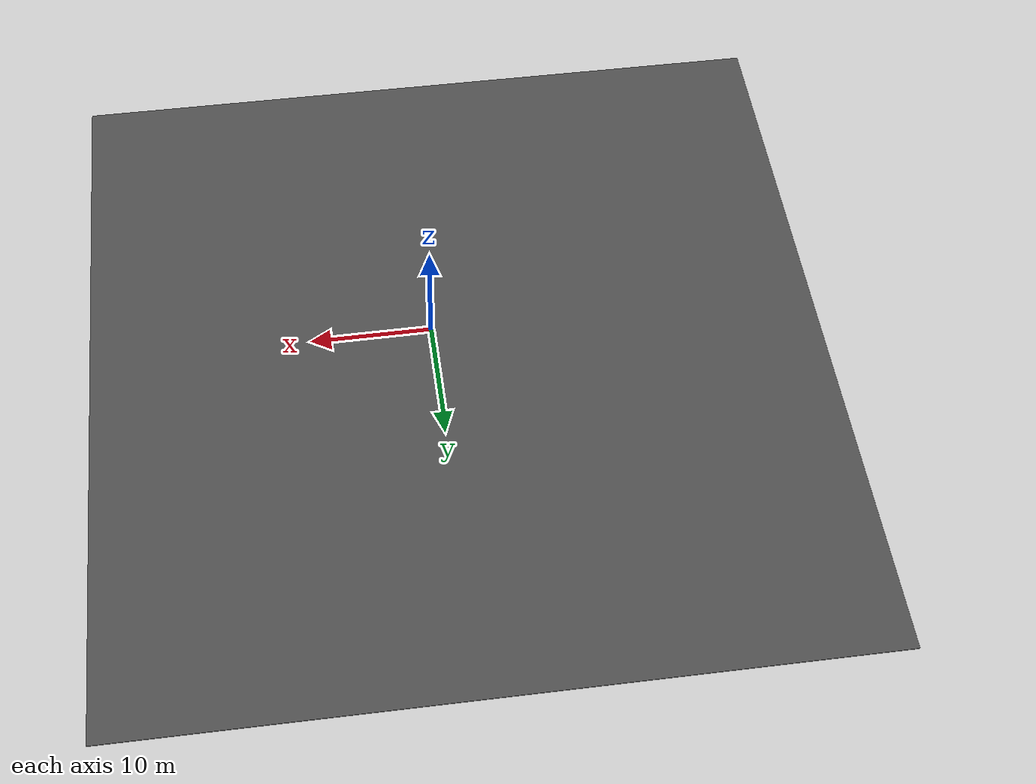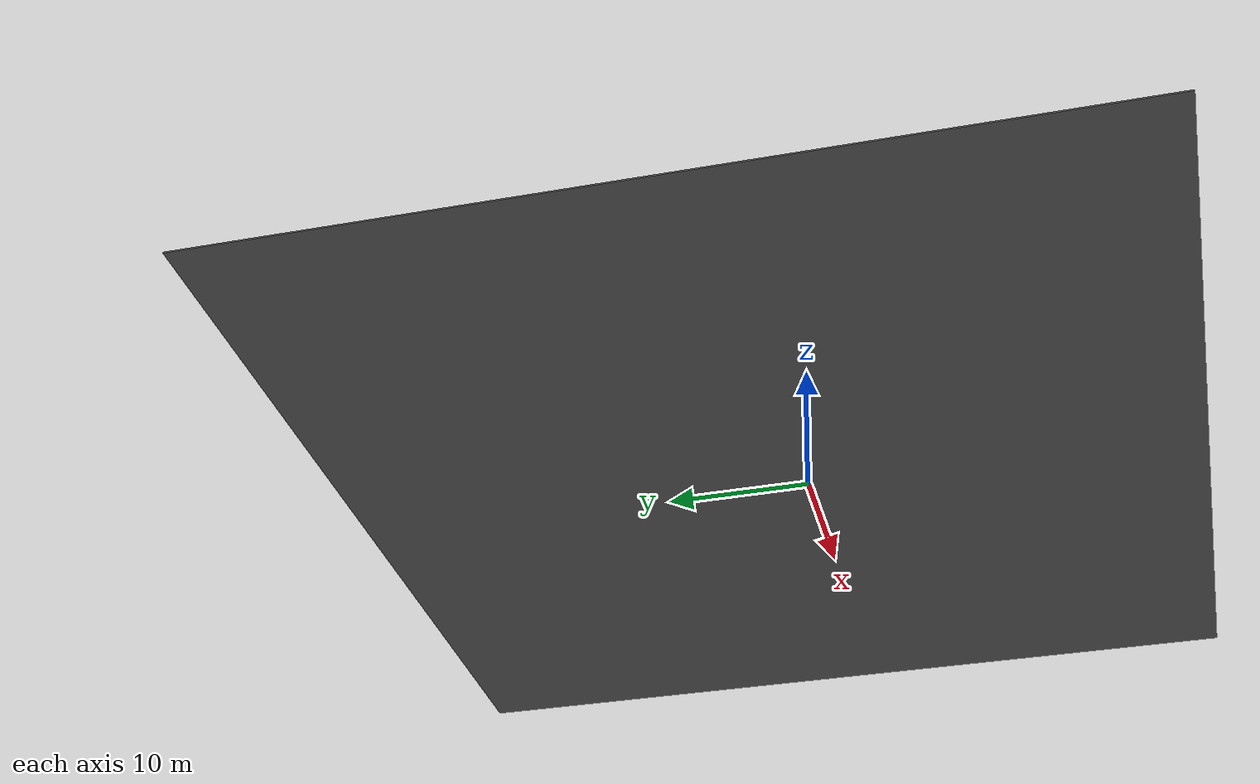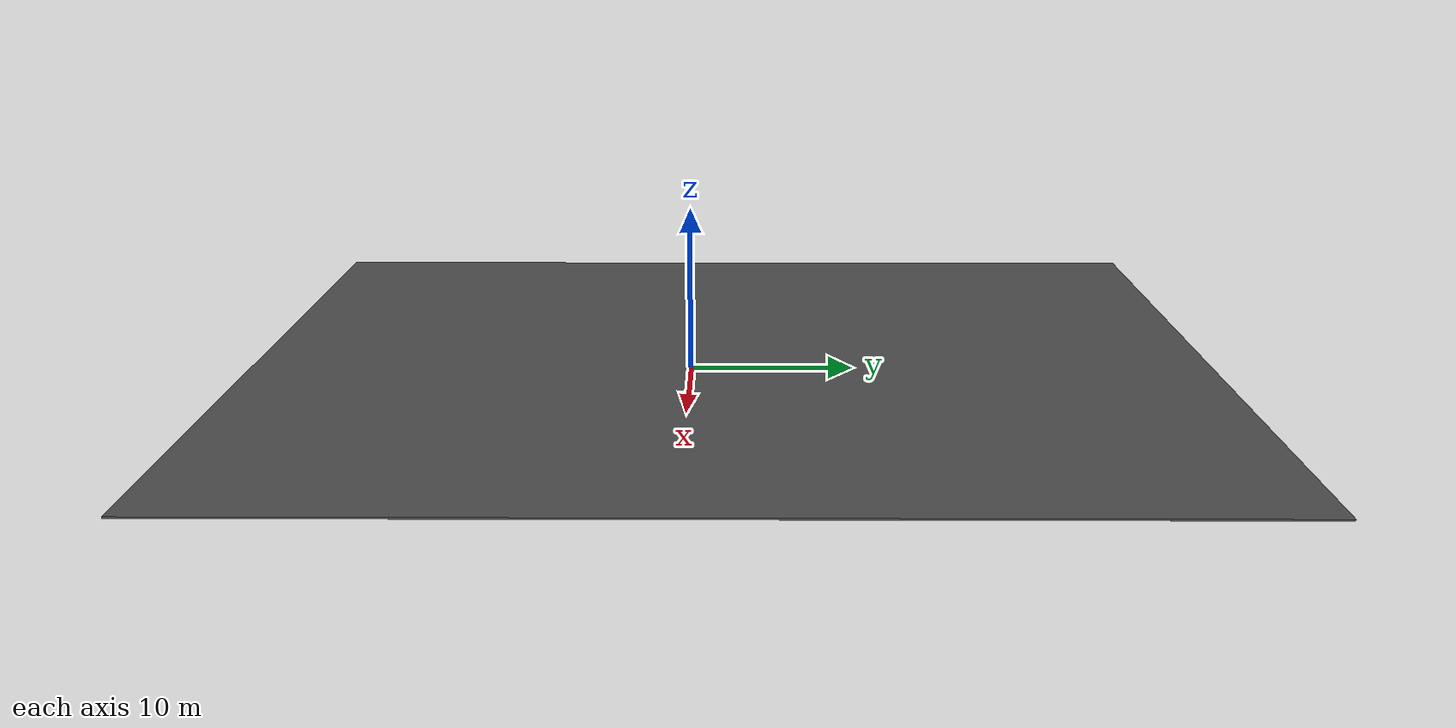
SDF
<?xml version="1.0"?>
<sdf version="1.4">
  <model name="black_ice_lower_friction">
    <static>true</static>
    <link name="link">
      <collision name="collision">
        <geometry>
          <box>
            <size>60 60 0.1</size>
          </box>
        </geometry>
        <surface>
          <friction>
            <ode>
              <mu>0.07</mu>
              <mu2>0.07</mu2>
            </ode>
          </friction>
        </surface>
      </collision>
      <visual name="visual_1">
        <pose>-2 2.5 0 0 0 0</pose>
        <cast_shadows>false</cast_shadows>
        <geometry>
          <box>
            <size>60 60 0.1</size>
          </box>
        </geometry>
        <material>
          <script>
            <uri>model://asphalt_plane/materials/scripts</uri>
            <uri>model://asphalt_plane/materials/textures</uri>
            <name>asphalt</name>
          </script>
        </material>
      </visual>
    </link>
  </model>
</sdf>
